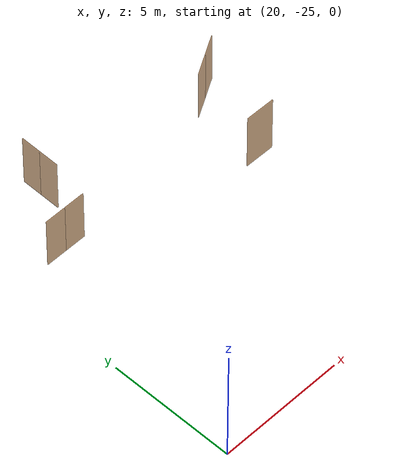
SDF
<sdf version="1.7">
 <world name="sim_world">
  <model name="part1_1">
   <pose>23.474426678062983 -13.057676065197946 0.0 0 0 1.5575382472829962</pose>
   <link name="right">
    <pose>0.4093948700962029 0 1.11 0 0 0</pose>
    <visual name="right_visual">
     <geometry><box><size>0.8087897401924058 0.03 2.2</size></box></geometry>
     <material>
      <ambient>0.5 0.25 0 0.6</ambient>
      <diffuse>0.5 0.25 0 0.6</diffuse>
      <pbr><metal><metalness>0.0</metalness></metal></pbr>
     </material>
    </visual>
    <collision name="right_collision">
     <geometry><box><size>0.8087897401924058 0.03 2.2</size></box></geometry>
     <surface><contact><collide_bitmask>0x02</collide_bitmask></contact></surface>
    </collision>
    <inertial>
     <mass>50.0</mass>
     <inertia><ixx>20.17041666666667</ixx><iyy>22.892253516002086</iyy><izz>2.729336849335414</izz></inertia>
    </inertial>
   </link>
   <joint name="right_joint" type="revolute">
    <parent>world</parent>
    <child>right</child>
    <axis><xyz>0 0 1</xyz><limit><lower>0</lower><upper>1.57</upper></limit></axis>
    <pose>0.4093948700962029 0 0 0 0 0</pose>
   </joint>
   <link name="left">
    <pose>-0.4093948700962029 0 1.11 0 0 0</pose>
    <visual name="left_visual">
     <geometry><box><size>0.8087897401924058 0.03 2.2</size></box></geometry>
     <material>
      <ambient>0.5 0.25 0 0.6</ambient>
      <diffuse>0.5 0.25 0 0.6</diffuse>
      <pbr><metal><metalness>0.0</metalness></metal></pbr>
     </material>
    </visual>
    <collision name="left_collision">
     <geometry><box><size>0.8087897401924058 0.03 2.2</size></box></geometry>
     <surface><contact><collide_bitmask>0x02</collide_bitmask></contact></surface>
    </collision>
    <inertial>
     <mass>50.0</mass>
     <inertia><ixx>20.17041666666667</ixx><iyy>22.892253516002086</iyy><izz>2.729336849335414</izz></inertia>
    </inertial>
   </link>
   <joint name="left_joint" type="revolute">
    <parent>world</parent>
    <child>left</child>
    <axis><xyz>0 0 1</xyz><limit><lower>-1.57</lower><upper>0</upper></limit></axis>
    <pose>-0.4093948700962029 0 0 0 0 0</pose>
   </joint>
   <plugin name="register_component" filename="libregister_component.so">
    <component name="Door">
     <v_max_door>0.5</v_max_door>
     <a_max_door>0.3</a_max_door>
     <a_nom_door>0.15</a_nom_door>
     <dx_min_door>0.01</dx_min_door>
     <f_max_door>500.0</f_max_door>
     <ros_interface>true</ros_interface>
     <door name="part1_1" type="DoubleSwingDoor" left_joint_name="left_joint" right_joint_name="right_joint"/>
    </component>
   </plugin>
  </model>
  <model name="part1_4">
   <pose>30.361404096088606 -14.032708004714948 0.0 0 0 -2.62655505252304</pose>
   <link name="right">
    <pose>0.4545178244978947 0 1.11 0 0 0</pose>
    <visual name="right_visual">
     <geometry><box><size>0.8990356489957894 0.03 2.2</size></box></geometry>
     <material>
      <ambient>0.5 0.25 0 0.6</ambient>
      <diffuse>0.5 0.25 0 0.6</diffuse>
      <pbr><metal><metalness>0.0</metalness></metal></pbr>
     </material>
    </visual>
    <collision name="right_collision">
     <geometry><box><size>0.8990356489957894 0.03 2.2</size></box></geometry>
     <surface><contact><collide_bitmask>0x02</collide_bitmask></contact></surface>
    </collision>
    <inertial>
     <mass>50.0</mass>
     <inertia><ixx>20.17041666666667</ixx><iyy>23.534437909022003</iyy><izz>3.371521242355334</izz></inertia>
    </inertial>
   </link>
   <joint name="right_joint" type="revolute">
    <parent>world</parent>
    <child>right</child>
    <axis><xyz>0 0 1</xyz><limit><lower>0</lower><upper>1.57</upper></limit></axis>
    <pose>0.4545178244978947 0 0 0 0 0</pose>
   </joint>
   <link name="left">
    <pose>-0.4545178244978947 0 1.11 0 0 0</pose>
    <visual name="left_visual">
     <geometry><box><size>0.8990356489957894 0.03 2.2</size></box></geometry>
     <material>
      <ambient>0.5 0.25 0 0.6</ambient>
      <diffuse>0.5 0.25 0 0.6</diffuse>
      <pbr><metal><metalness>0.0</metalness></metal></pbr>
     </material>
    </visual>
    <collision name="left_collision">
     <geometry><box><size>0.8990356489957894 0.03 2.2</size></box></geometry>
     <surface><contact><collide_bitmask>0x02</collide_bitmask></contact></surface>
    </collision>
    <inertial>
     <mass>50.0</mass>
     <inertia><ixx>20.17041666666667</ixx><iyy>23.534437909022003</iyy><izz>3.371521242355334</izz></inertia>
    </inertial>
   </link>
   <joint name="left_joint" type="revolute">
    <parent>world</parent>
    <child>left</child>
    <axis><xyz>0 0 1</xyz><limit><lower>-1.57</lower><upper>0</upper></limit></axis>
    <pose>-0.4545178244978947 0 0 0 0 0</pose>
   </joint>
   <plugin name="register_component" filename="libregister_component.so">
    <component name="Door">
     <v_max_door>0.5</v_max_door>
     <a_max_door>0.3</a_max_door>
     <a_nom_door>0.15</a_nom_door>
     <dx_min_door>0.01</dx_min_door>
     <f_max_door>500.0</f_max_door>
     <ros_interface>true</ros_interface>
     <door name="part1_4" type="DoubleSwingDoor" left_joint_name="left_joint" right_joint_name="right_joint"/>
    </component>
   </plugin>
  </model>
  <model name="part1_2">
   <pose>22.344348228843145 -15.362987000202047 0.0 0 0 3.138955944615511</pose>
   <link name="right">
    <pose>0.4275206745211724 0 1.11 0 0 0</pose>
    <visual name="right_visual">
     <geometry><box><size>0.8450413490423447 0.03 2.2</size></box></geometry>
     <material>
      <ambient>0.5 0.25 0 0.6</ambient>
      <diffuse>0.5 0.25 0 0.6</diffuse>
      <pbr><metal><metalness>0.0</metalness></metal></pbr>
     </material>
    </visual>
    <collision name="right_collision">
     <geometry><box><size>0.8450413490423447 0.03 2.2</size></box></geometry>
     <surface><contact><collide_bitmask>0x02</collide_bitmask></contact></surface>
    </collision>
    <inertial>
     <mass>50.0</mass>
     <inertia><ixx>20.17041666666667</ixx><iyy>23.142062006630447</iyy><izz>2.979145339963775</izz></inertia>
    </inertial>
   </link>
   <joint name="right_joint" type="revolute">
    <parent>world</parent>
    <child>right</child>
    <axis><xyz>0 0 1</xyz><limit><lower>0</lower><upper>1.57</upper></limit></axis>
    <pose>0.4275206745211724 0 0 0 0 0</pose>
   </joint>
   <link name="left">
    <pose>-0.4275206745211724 0 1.11 0 0 0</pose>
    <visual name="left_visual">
     <geometry><box><size>0.8450413490423447 0.03 2.2</size></box></geometry>
     <material>
      <ambient>0.5 0.25 0 0.6</ambient>
      <diffuse>0.5 0.25 0 0.6</diffuse>
      <pbr><metal><metalness>0.0</metalness></metal></pbr>
     </material>
    </visual>
    <collision name="left_collision">
     <geometry><box><size>0.8450413490423447 0.03 2.2</size></box></geometry>
     <surface><contact><collide_bitmask>0x02</collide_bitmask></contact></surface>
    </collision>
    <inertial>
     <mass>50.0</mass>
     <inertia><ixx>20.17041666666667</ixx><iyy>23.142062006630447</iyy><izz>2.979145339963775</izz></inertia>
    </inertial>
   </link>
   <joint name="left_joint" type="revolute">
    <parent>world</parent>
    <child>left</child>
    <axis><xyz>0 0 1</xyz><limit><lower>-1.57</lower><upper>0</upper></limit></axis>
    <pose>-0.4275206745211724 0 0 0 0 0</pose>
   </joint>
   <plugin name="register_component" filename="libregister_component.so">
    <component name="Door">
     <v_max_door>0.5</v_max_door>
     <a_max_door>0.3</a_max_door>
     <a_nom_door>0.15</a_nom_door>
     <dx_min_door>0.01</dx_min_door>
     <f_max_door>500.0</f_max_door>
     <ros_interface>true</ros_interface>
     <door name="part1_2" type="DoubleSwingDoor" left_joint_name="left_joint" right_joint_name="right_joint"/>
    </component>
   </plugin>
  </model>
  <model name="L3_part4_6">
   <pose>23.503733909639394 -22.899619278910293 10.0 0 0 3.1263699452614673</pose>
   <link name="right">
    <pose>0 0 1.11 0 0 0</pose>
    <visual name="right_visual">
     <geometry><box><size>1.0765771709066014 0.03 2.2</size></box></geometry>
     <material>
      <ambient>0.5 0.25 0 0.6</ambient>
      <diffuse>0.5 0.25 0 0.6</diffuse>
      <pbr><metal><metalness>0.0</metalness></metal></pbr>
     </material>
    </visual>
    <collision name="right_collision">
     <geometry><box><size>1.0765771709066014 0.03 2.2</size></box></geometry>
     <surface><contact><collide_bitmask>0x02</collide_bitmask></contact></surface>
    </collision>
    <inertial>
     <mass>50.0</mass>
     <inertia><ixx>20.17041666666667</ixx><iyy>24.995910020488594</iyy><izz>4.832993353821923</izz></inertia>
    </inertial>
   </link>
   <joint name="right_joint" type="revolute">
    <parent>world</parent>
    <child>right</child>
    <axis><xyz>0 0 -1</xyz><limit><lower>0</lower><upper>1.57</upper></limit></axis>
    <pose>0.5432885854533007 0 0 0 0 0</pose>
   </joint>
   <plugin name="register_component" filename="libregister_component.so">
    <component name="Door">
     <v_max_door>0.5</v_max_door>
     <a_max_door>0.3</a_max_door>
     <a_nom_door>0.15</a_nom_door>
     <dx_min_door>0.01</dx_min_door>
     <f_max_door>500.0</f_max_door>
     <ros_interface>true</ros_interface>
     <door name="L3_part4_6" type="SwingDoor" left_joint_name="empty_joint" right_joint_name="right_joint"/>
    </component>
   </plugin>
  </model>
 </world>
</sdf>
